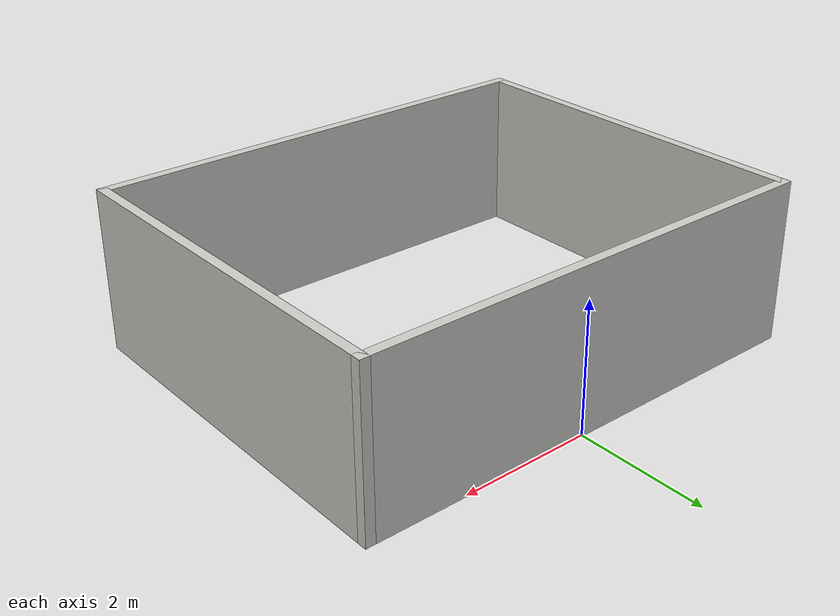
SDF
<?xml version='1.0'?>
<sdf version='1.6'>
  <model name='house'>
    <pose frame=''>-0.215 -2.985 0 0 -0 0</pose>
    <link name='Wall_0'>
      <collision name='Wall_0_Collision'>
        <geometry>
          <box>
            <size>6 0.15 2.5</size>
          </box>
        </geometry>
        <pose frame=''>0 0 1.25 0 -0 0</pose>
      </collision>
      <visual name='Wall_0_Visual'>
        <pose frame=''>0 0 1.25 0 -0 0</pose>
        <geometry>
          <box>
            <size>6 0.15 2.5</size>
          </box>
        </geometry>
        <material>
          <script>
            <uri>file://media/materials/scripts/gazebo.material</uri>
            <name>Gazebo/CeilingTiled</name>
          </script>
          <ambient>0.760784 0.662745 0.627451 1</ambient>
        </material>
        <meta>
          <layer>0</layer>
        </meta>
      </visual>
      <pose frame=''>-3.675 0 0 0 0 -1.5708</pose>
    </link>
    <link name='Wall_1'>
      <collision name='Wall_1_Collision'>
        <geometry>
          <box>
            <size>7.5 0.15 2.5</size>
          </box>
        </geometry>
        <pose frame=''>0 0 1.25 0 -0 0</pose>
      </collision>
      <visual name='Wall_1_Visual'>
        <pose frame=''>0 0 1.25 0 -0 0</pose>
        <geometry>
          <box>
            <size>7.5 0.15 2.5</size>
          </box>
        </geometry>
        <material>
          <script>
            <uri>file://media/materials/scripts/gazebo.material</uri>
            <name>Gazebo/CeilingTiled</name>
          </script>
          <ambient>0.996078 0.47451 0.0196078 1</ambient>
        </material>
        <meta>
          <layer>0</layer>
        </meta>
      </visual>
      <pose frame=''>0 -2.925 0 0 -0 0</pose>
    </link>
    <link name='Wall_2'>
      <collision name='Wall_2_Collision'>
        <geometry>
          <box>
            <size>6 0.15 2.5</size>
          </box>
        </geometry>
        <pose frame=''>0 0 1.25 0 -0 0</pose>
      </collision>
      <visual name='Wall_2_Visual'>
        <pose frame=''>0 0 1.25 0 -0 0</pose>
        <geometry>
          <box>
            <size>6 0.15 2.5</size>
          </box>
        </geometry>
        <material>
          <script>
            <uri>file://media/materials/scripts/gazebo.material</uri>
            <name>Gazebo/CeilingTiled</name>
          </script>
          <ambient>0.435294 0.796078 0.67451 1</ambient>
        </material>
        <meta>
          <layer>0</layer>
        </meta>
      </visual>
      <pose frame=''>3.675 0 0 0 -0 1.5708</pose>
    </link>
    <link name='Wall_3'>
      <collision name='Wall_3_Collision'>
        <geometry>
          <box>
            <size>7.5 0.15 2.5</size>
          </box>
        </geometry>
        <pose frame=''>0 0 1.25 0 -0 0</pose>
      </collision>
      <visual name='Wall_3_Visual'>
        <pose frame=''>0 0 1.25 0 -0 0</pose>
        <geometry>
          <box>
            <size>7.5 0.15 2.5</size>
          </box>
        </geometry>
        <material>
          <script>
            <uri>file://media/materials/scripts/gazebo.material</uri>
            <name>Gazebo/CeilingTiled</name>
          </script>
          <ambient>1 0.764706 0.305882 1</ambient>
        </material>
        <meta>
          <layer>0</layer>
        </meta>
      </visual>
      <pose frame=''>0 2.925 0 0 -0 3.14159</pose>
    </link>
    <static>1</static>
  </model>
</sdf>
